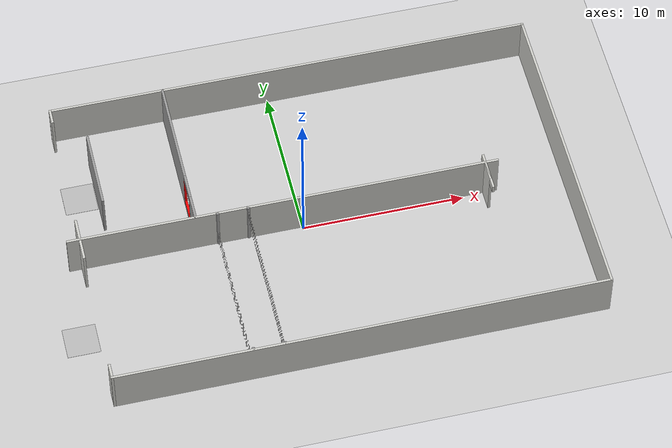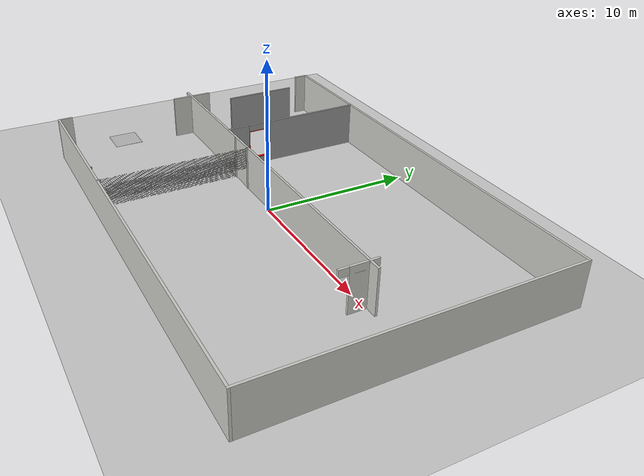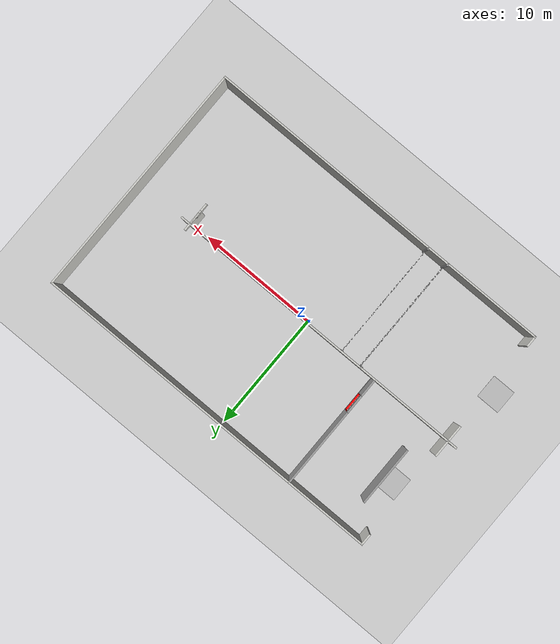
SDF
<sdf version="1.6">
 <world name="default">
  <model name="ground_plane">
   <static>1</static>
   <link name="link">
    <collision name="collision">
     <geometry><plane><normal>0 0 1</normal><size>100 100</size></plane></geometry>
     <surface><friction><ode><mu>100</mu><mu2>50</mu2></ode></friction></surface>
    </collision>
    <visual name="visual">
     <cast_shadows>0</cast_shadows>
     <geometry><plane><normal>0 0 1</normal><size>100 100</size></plane></geometry>
     <material>
      <script><uri>file://media/materials/scripts/gazebo.material</uri><name>Gazebo/Grey</name></script>
     </material>
    </visual>
   </link>
  </model>
  <model name="robot_house2_0">
   <pose>1.40144 0.109939 0 0 -0 0</pose>
   <link name="Wall_0">
    <collision name="Wall_0_Collision">
     <geometry><box><size>30 0.15 3</size></box></geometry>
     <pose>0 0 1.5 0 -0 0</pose>
    </collision>
    <visual name="Wall_0_Visual">
     <pose>0 0 1.5 0 -0 0</pose>
     <geometry><box><size>30 0.15 3</size></box></geometry>
     <material>
      <script><uri>file://media/materials/scripts/gazebo.material</uri><name>Gazebo/CeilingTiled</name></script>
      <ambient>1 1 1 1</ambient>
     </material>
    </visual>
    <pose>-1e-06 9.92401 0 0 -0 0</pose>
   </link>
   <link name="Wall_1">
    <collision name="Wall_1_Collision">
     <geometry><box><size>20 0.15 3</size></box></geometry>
     <pose>0 0 1.5 0 -0 0</pose>
    </collision>
    <visual name="Wall_1_Visual">
     <pose>0 0 1.5 0 -0 0</pose>
     <geometry><box><size>20 0.15 3</size></box></geometry>
     <material>
      <script><uri>file://media/materials/scripts/gazebo.material</uri><name>Gazebo/CeilingTiled</name></script>
      <ambient>1 1 1 1</ambient>
     </material>
    </visual>
    <pose>14.925 -0.00099 0 0 0 -1.5708</pose>
   </link>
   <link name="Wall_11">
    <collision name="Wall_11_Collision">
     <geometry><box><size>1.5 0.15 3</size></box></geometry>
     <pose>0 0 1.5 0 -0 0</pose>
    </collision>
    <visual name="Wall_11_Visual">
     <pose>0 0 1.5 0 -0 0</pose>
     <geometry><box><size>1.5 0.15 3</size></box></geometry>
     <material>
      <script><uri>file://media/materials/scripts/gazebo.material</uri><name>Gazebo/CeilingTiled</name></script>
      <ambient>1 1 1 1</ambient>
     </material>
    </visual>
    <pose>-14.925 0.74901 0 0 -0 1.5708</pose>
   </link>
   <link name="Wall_14">
    <collision name="Wall_14_Collision">
     <geometry><box><size>5 0.15 3</size></box></geometry>
     <pose>0 0 1.5 0 -0 0</pose>
    </collision>
    <visual name="Wall_14_Visual">
     <pose>0 0 1.5 0 -0 0</pose>
     <geometry><box><size>5 0.15 3</size></box></geometry>
     <material>
      <script><uri>file://media/materials/scripts/gazebo.material</uri><name>Gazebo/Grey</name></script>
      <ambient>1 1 1 1</ambient>
     </material>
    </visual>
    <pose>-13.075 4.99901 0 0 0 -1.5708</pose>
   </link>
   <link name="Wall_16">
    <collision name="Wall_16_Collision">
     <geometry><box><size>1.5 0.15 3</size></box></geometry>
     <pose>0 0 1.5 0 -0 0</pose>
    </collision>
    <visual name="Wall_16_Visual">
     <pose>0 0 1.5 0 -0 0</pose>
     <geometry><box><size>1.5 0.15 3</size></box></geometry>
     <material>
      <script><uri>file://media/materials/scripts/gazebo.material</uri><name>Gazebo/CeilingTiled</name></script>
      <ambient>1 1 1 1</ambient>
     </material>
    </visual>
    <pose>-14.925 -0.60099 0 0 0 -1.5708</pose>
   </link>
   <link name="Wall_2">
    <collision name="Wall_2_Collision">
     <geometry><box><size>30 0.15 3</size></box></geometry>
     <pose>0 0 1.5 0 -0 0</pose>
    </collision>
    <visual name="Wall_2_Visual">
     <pose>0 0 1.5 0 -0 0</pose>
     <geometry><box><size>30 0.15 3</size></box></geometry>
     <material>
      <script><uri>file://media/materials/scripts/gazebo.material</uri><name>Gazebo/CeilingTiled</name></script>
      <ambient>1 1 1 1</ambient>
     </material>
    </visual>
    <pose>-1e-06 -9.92599 0 0 -0 3.14159</pose>
   </link>
   <link name="Wall_21">
    <collision name="Wall_21_Collision">
     <geometry><box><size>1.19 0.15 3</size></box></geometry>
     <pose>0 0 1.5 0 -0 0</pose>
    </collision>
    <visual name="Wall_21_Visual">
     <pose>0 0 1.5 0 -0 0</pose>
     <geometry><box><size>1.19 0.15 3</size></box></geometry>
     <material>
      <script><uri>file://media/materials/scripts/gazebo.material</uri><name>Gazebo/CeilingTiled</name></script>
      <ambient>1 1 1 1</ambient>
     </material>
    </visual>
    <pose>9.925 -0.60099 0 0 0 -1.5708</pose>
   </link>
   <link name="Wall_23">
    <collision name="Wall_23_Collision">
     <geometry><box><size>2.5 0.15 0.5</size></box></geometry>
     <pose>0 0 2.75 0 -0 0</pose>
    </collision>
    <visual name="Wall_23_Visual">
     <pose>0 0 2.75 0 -0 0</pose>
     <geometry><box><size>2.5 0.15 0.5</size></box></geometry>
     <material>
      <script><uri>file://media/materials/scripts/gazebo.material</uri><name>Gazebo/CeilingTiled</name></script>
      <ambient>1 1 1 1</ambient>
     </material>
    </visual>
    <pose>9.925 -0.60099 0 0 0 -1.5708</pose>
   </link>
   <link name="Wall_22">
    <collision name="Wall_22_Collision">
     <geometry><box><size>1 0.15 3</size></box></geometry>
     <pose>0 0 1.5 0 -0 0</pose>
    </collision>
    <visual name="Wall_22_Visual">
     <pose>0 0 1.5 0 -0 0</pose>
     <geometry><box><size>1 0.15 3</size></box></geometry>
     <material>
      <script><uri>file://media/materials/scripts/gazebo.material</uri><name>Gazebo/CeilingTiled</name></script>
      <ambient>1 1 1 1</ambient>
     </material>
    </visual>
    <pose>-14.925 -9.50099 0 0 -0 1.5708</pose>
   </link>
   <link name="Wall_5">
    <collision name="Wall_5_Collision">
     <geometry><box><size>26.5 0.15 3</size></box></geometry>
     <pose>0 0 1.5 0 -0 0</pose>
    </collision>
    <visual name="Wall_5_Visual">
     <pose>0 0 1.5 0 -0 0</pose>
     <geometry><box><size>26.5 0.15 3</size></box></geometry>
     <material>
      <script><uri>file://media/materials/scripts/gazebo.material</uri><name>Gazebo/CeilingTiled</name></script>
      <ambient>1 1 1 1</ambient>
     </material>
    </visual>
    <pose>-2.5 0.07401 0 0 -0 0</pose>
   </link>
   <link name="Wall_7">
    <pose>-7.925 5.00101 0 0 0 -1.5708</pose>
    <visual name="Wall_7_Visual_0">
     <pose>-1.6115 0 1.5 0 -0 0</pose>
     <geometry><box><size>6.777 0.15 3</size></box></geometry>
     <material>
      <script><uri>file://media/materials/scripts/gazebo.material</uri><name>Gazebo/Grey</name></script>
      <ambient>1 1 1 1</ambient>
     </material>
    </visual>
    <collision name="Wall_7_Collision_0">
     <geometry><box><size>6.777 0.15 3</size></box></geometry>
     <pose>-1.6115 0 1.5 0 -0 0</pose>
    </collision>
    <visual name="Wall_7_Visual_1">
     <pose>3.3885 0 0.225 0 -0 0</pose>
     <geometry><box><size>3.223 0.15 0.45</size></box></geometry>
     <material>
      <script><uri>file://media/materials/scripts/gazebo.material</uri><name>Gazebo/Grey</name></script>
      <ambient>1 1 1 1</ambient>
     </material>
    </visual>
    <collision name="Wall_7_Collision_1">
     <geometry><box><size>3.223 0.15 0.45</size></box></geometry>
     <pose>3.3885 0 0.225 0 -0 0</pose>
    </collision>
    <visual name="Wall_7_Visual_2">
     <pose>4.1885 0 1.725 0 -0 0</pose>
     <geometry><box><size>1.623 0.15 2.55</size></box></geometry>
     <material>
      <script><uri>file://media/materials/scripts/gazebo.material</uri><name>Gazebo/Grey</name></script>
      <ambient>1 1 1 1</ambient>
     </material>
    </visual>
    <collision name="Wall_7_Collision_2">
     <geometry><box><size>1.623 0.15 2.55</size></box></geometry>
     <pose>4.1885 0 1.725 0 -0 0</pose>
    </collision>
    <visual name="Wall_7_Visual_3">
     <pose>2.577 0 2.775 0 -0 0</pose>
     <geometry><box><size>1.6 0.15 0.45</size></box></geometry>
     <material>
      <script><uri>file://media/materials/scripts/gazebo.material</uri><name>Gazebo/Grey</name></script>
      <ambient>1 1 1 1</ambient>
     </material>
    </visual>
    <collision name="Wall_7_Collision_3">
     <geometry><box><size>1.6 0.15 0.45</size></box></geometry>
     <pose>2.577 0 2.775 0 -0 0</pose>
    </collision>
   </link>
   <link name="Wall_24">
    <pose>-7.925 5.00101 0 0 0 -1.5708</pose>
    <visual name="Wall_24_Visual_0">
     <pose>1.802 0 1.5 0 -0 0</pose>
     <geometry><box><size>0.05 0.15 2.1</size></box></geometry>
     <material>
      <ambient>1 0 0 1</ambient>
      <diffuse>1 0 0 1</diffuse>
      <specular>0 0 0 0</specular>
      <emissive>0 0 0 1</emissive>
     </material>
    </visual>
    <collision name="Wall_24_Collision_0">
     <geometry><box><size>0.05 0.15 2.1</size></box></geometry>
     <pose>1.802 0 1.5 0 -0 0</pose>
    </collision>
    <visual name="Wall_24_Visual_1">
     <pose>2.577 0 0.475 0 -0 0</pose>
     <geometry><box><size>1.55 0.15 0.05</size></box></geometry>
     <material>
      <ambient>1 0 0 1</ambient>
      <diffuse>1 0 0 1</diffuse>
      <specular>0 0 0 0</specular>
      <emissive>0 0 0 1</emissive>
     </material>
    </visual>
    <collision name="Wall_24_Collision_1">
     <geometry><box><size>1.55 0.15 0.05</size></box></geometry>
     <pose>2.577 0 0.475 0 -0 0</pose>
    </collision>
    <visual name="Wall_24_Visual_2">
     <pose>3.352 0 1.475 0 -0 0</pose>
     <geometry><box><size>0.05 0.15 2.05</size></box></geometry>
     <material>
      <ambient>1 0 0 1</ambient>
      <diffuse>1 0 0 1</diffuse>
      <specular>0 0 0 0</specular>
      <emissive>0 0 0 1</emissive>
     </material>
    </visual>
    <collision name="Wall_24_Collision_2">
     <geometry><box><size>0.05 0.15 2.05</size></box></geometry>
     <pose>3.352 0 1.475 0 -0 0</pose>
    </collision>
    <visual name="Wall_24_Visual_3">
     <pose>2.602 0 2.525 0 -0 0</pose>
     <geometry><box><size>1.55 0.15 0.05</size></box></geometry>
     <material>
      <ambient>1 0 0 1</ambient>
      <diffuse>1 0 0 1</diffuse>
      <specular>0 0 0 0</specular>
      <emissive>0 0 0 1</emissive>
     </material>
    </visual>
    <collision name="Wall_24_Collision_3">
     <geometry><box><size>1.55 0.15 0.05</size></box></geometry>
     <pose>2.602 0 2.525 0 -0 0</pose>
    </collision>
   </link>
   <link name="Wall_9">
    <collision name="Wall_9_Collision">
     <geometry><box><size>1 0.15 3</size></box></geometry>
     <pose>0 0 1.5 0 -0 0</pose>
    </collision>
    <visual name="Wall_9_Visual">
     <pose>0 0 1.5 0 -0 0</pose>
     <geometry><box><size>1 0.15 3</size></box></geometry>
     <material>
      <script><uri>file://media/materials/scripts/gazebo.material</uri><name>Gazebo/CeilingTiled</name></script>
      <ambient>1 1 1 1</ambient>
     </material>
    </visual>
    <pose>-14.925 9.49901 0 0 0 -1.5708</pose>
   </link>
   <static>1</static>
  </model>
  <model name="start_0">
   <static>1</static>
   <pose>-12.7927 6.76191 0 0 -0 0</pose>
   <link name="box">
    <pose>0 -1.5 0 0 -0 0</pose>
    <collision name="collision"><geometry><box><size>2 2 0.01</size></box></geometry></collision>
    <visual name="visual">
     <geometry><box><size>2 2 0.01</size></box></geometry>
     <material>
      <script>
       <uri>model://start/materials/scripts</uri>
       <uri>model://start/materials/textures</uri>
       <name>TexturedShape/Start</name>
      </script>
     </material>
    </visual>
   </link>
  </model>
  <model name="Net_Top">
   <static>1</static>
   <link name="link_1">
    <inertial>
     <mass>1</mass>
     <inertia>
      <ixx>0.166667</ixx>
      <ixy>0</ixy>
      <ixz>0</ixz>
      <iyy>0.166667</iyy>
      <iyz>0</iyz>
      <izz>0.166667</izz>
     </inertia>
    </inertial>
    <visual name="visual">
     <geometry><mesh><uri>model://Net_Top/materials/net_top.dae</uri><scale>1 1 1</scale></mesh></geometry>
     <material>
      <lighting>1</lighting>
      <script><uri>file://media/materials/scripts/gazebo.material</uri><name>Gazebo/Grey</name></script>
      <ambient>0.3 0.3 0.3 1</ambient>
      <diffuse>0.7 0.7 0.7 1</diffuse>
      <specular>0.01 0.01 0.01 1</specular>
      <emissive>0 0 0 1</emissive>
     </material>
    </visual>
    <collision name="collision">
     <geometry><mesh><uri>model://Net_Top/materials/net_top.dae</uri><scale>1 1 1</scale></mesh></geometry>
     <surface>
      <friction>
       <ode><mu>1</mu><mu2>1</mu2><fdir1>0 0 0</fdir1><slip1>0</slip1><slip2>0</slip2></ode>
       <torsional>
        <coefficient>1</coefficient>
        <patch_radius>0</patch_radius>
        <surface_radius>0</surface_radius>
        <use_patch_radius>1</use_patch_radius>
        <ode><slip>0</slip></ode>
       </torsional>
      </friction>
      <bounce><restitution_coefficient>0</restitution_coefficient><threshold>1e+06</threshold></bounce>
      <contact>
       <collide_without_contact>0</collide_without_contact>
       <collide_without_contact_bitmask>1</collide_without_contact_bitmask>
       <collide_bitmask>1</collide_bitmask>
       <ode>
        <soft_cfm>0</soft_cfm>
        <soft_erp>0.2</soft_erp>
        <kp>1e+13</kp>
        <kd>1</kd>
        <max_vel>0.01</max_vel>
        <min_depth>0</min_depth>
       </ode>
       <bullet>
        <split_impulse>1</split_impulse>
        <split_impulse_penetration_threshold>-0.01</split_impulse_penetration_threshold>
        <soft_cfm>0</soft_cfm>
        <soft_erp>0.2</soft_erp>
        <kp>1e+13</kp>
        <kd>1</kd>
       </bullet>
      </contact>
     </surface>
    </collision>
   </link>
   <static>0</static>
   <pose>-3.31866 -4.80275 0 0 -0 0</pose>
  </model>
  <model name="Net_Down">
   <static>1</static>
   <link name="link_1">
    <inertial>
     <mass>1</mass>
     <inertia>
      <ixx>0.166667</ixx>
      <ixy>0</ixy>
      <ixz>0</ixz>
      <iyy>0.166667</iyy>
      <iyz>0</iyz>
      <izz>0.166667</izz>
     </inertia>
    </inertial>
    <visual name="visual">
     <geometry><mesh><uri>model://Net_Down/materials/net_down.dae</uri><scale>1 1 1</scale></mesh></geometry>
     <material>
      <lighting>1</lighting>
      <script><uri>file://media/materials/scripts/gazebo.material</uri><name>Gazebo/Grey</name></script>
      <ambient>0.3 0.3 0.3 1</ambient>
      <diffuse>0.7 0.7 0.7 1</diffuse>
      <specular>0.01 0.01 0.01 1</specular>
      <emissive>0 0 0 1</emissive>
     </material>
    </visual>
    <collision name="collision">
     <geometry><mesh><uri>model://Net_Down/materials/net_down.dae</uri><scale>1 1 1</scale></mesh></geometry>
     <surface>
      <friction>
       <ode><mu>1</mu><mu2>1</mu2><fdir1>0 0 0</fdir1><slip1>0</slip1><slip2>0</slip2></ode>
       <torsional>
        <coefficient>1</coefficient>
        <patch_radius>0</patch_radius>
        <surface_radius>0</surface_radius>
        <use_patch_radius>1</use_patch_radius>
        <ode><slip>0</slip></ode>
       </torsional>
      </friction>
      <bounce><restitution_coefficient>0</restitution_coefficient><threshold>1e+06</threshold></bounce>
      <contact>
       <collide_without_contact>0</collide_without_contact>
       <collide_without_contact_bitmask>1</collide_without_contact_bitmask>
       <collide_bitmask>1</collide_bitmask>
       <ode>
        <soft_cfm>0</soft_cfm>
        <soft_erp>0.2</soft_erp>
        <kp>1e+13</kp>
        <kd>1</kd>
        <max_vel>0.01</max_vel>
        <min_depth>0</min_depth>
       </ode>
       <bullet>
        <split_impulse>1</split_impulse>
        <split_impulse_penetration_threshold>-0.01</split_impulse_penetration_threshold>
        <soft_cfm>0</soft_cfm>
        <soft_erp>0.2</soft_erp>
        <kp>1e+13</kp>
        <kd>1</kd>
       </bullet>
      </contact>
     </surface>
    </collision>
   </link>
   <static>0</static>
   <pose>-5.19773 -4.79799 0 0 -0 0</pose>
  </model>
  <model name="end_0">
   <static>1</static>
   <pose>-14.5903 -3.45211 0 0 -0 0</pose>
   <link name="box">
    <pose>0 -1.5 0 0 -0 0</pose>
    <collision name="collision"><geometry><box><size>2 2 0.01</size></box></geometry></collision>
    <visual name="visual">
     <geometry><box><size>2 2 0.01</size></box></geometry>
     <material>
      <script>
       <uri>model://end/materials/scripts</uri>
       <uri>model://end/materials/textures</uri>
       <name>TexturedShape/End</name>
      </script>
     </material>
    </visual>
   </link>
  </model>
 </world>
</sdf>
